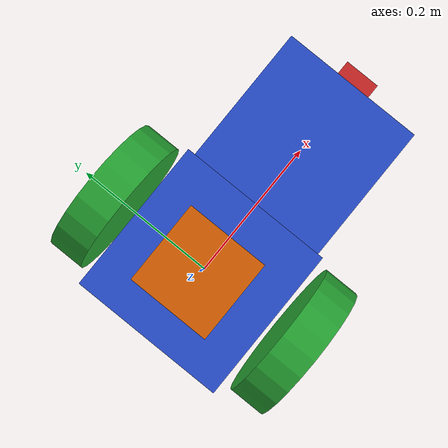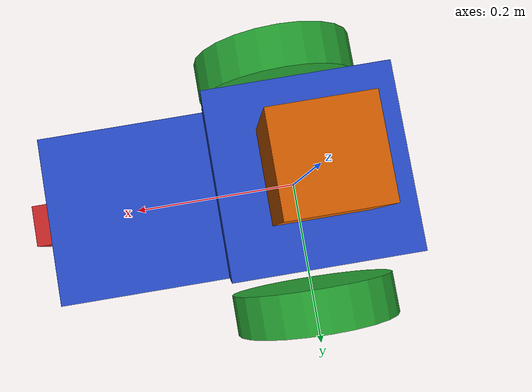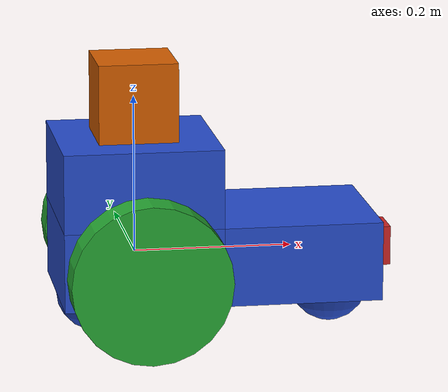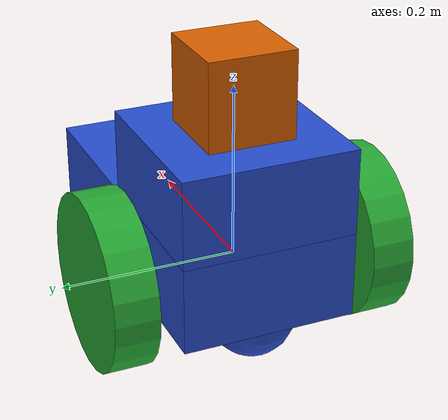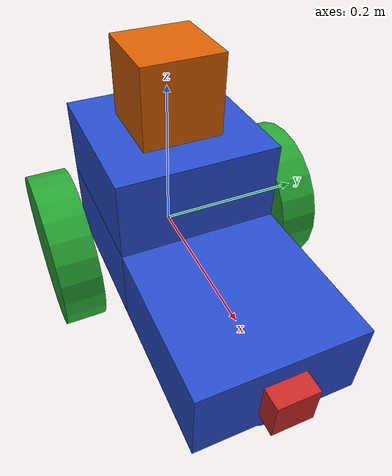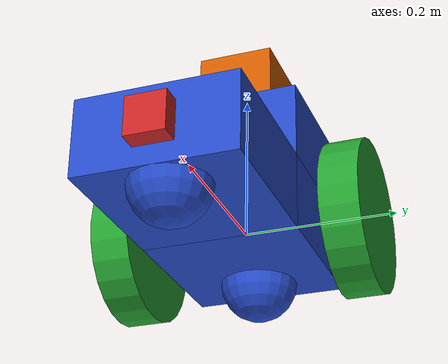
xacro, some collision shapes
<?xml version='1.0'?>

<robot name="shane_bot" xmlns:xacro="http://www.ros.org/wiki/xacro">

	<!-- Import the Gazebo plugin file (i.e. shane_bot.gazebo) -->
	<xacro:include filename="$(find shane_bot)/urdf/shane_bot.gazebo"/>

	<!-- Import Rviz colors -->
  	<xacro:include filename="$(find shane_bot)/urdf/materials.xacro"/>

	<!-- Not sure what this part is -->
	<link name="robot_footprint"></link>

	<!-- Joint from robot footprint to chassis -->
	<joint name="robot_footprint_joint" type="fixed">
		<origin xyz="0 0 0" rpy="0 0 0" />
		<parent link="robot_footprint"/>
		<child link="chassis" />
	</joint>

	<!-- The robot chassis -->
	<link name="chassis">
		<pose>0 0 0.1 0 0 0</pose>

		<inertial>
			<mass value="15.0"/>
			<origin xyz="0.0 0 0" rpy="0 0 0"/>
			<inertia
				ixx="0.1" ixy="0" ixz="0"
				iyy="0.1" iyz="0"
				izz="0.1"
			/>
		</inertial>

		<!-- Main Chassis -->
		<collision name="chassis_collision">
			<origin xyz="0 0 0" rpy="0 0 0"/>
			<geometry>
				<box size="0.2 0.2 0.1"/>
			</geometry>
		</collision>

		<visual name="chassis_visual">
			<origin xyz="0 0 0" rpy="0 0 0"/>
			<geometry>
				<box size="0.2 0.2 0.1"/>
			</geometry>
			<material name="blue"/>
		</visual>

		<!-- Front portion of chassis -->
		<collision name="front_chassis_collision">
			<origin xyz="0.2 0 0" rpy="0 0 0"/>
			<geometry>
				<box size="0.2 0.2 0.1"/>
			</geometry>
		</collision>

		<visual name="front_chassis_visual">
			<origin xyz="0.2 0 0" rpy="0 0 0"/>
			<geometry>
				<box size="0.2 0.2 0.1"/>
			</geometry>
			<material name="blue"/>
		</visual>

		<!-- Top portion of chassis -->
		<collision name="top_chassis_collision">
			<origin xyz="0 0 0.1" rpy="0 0 0"/>
			<geometry>
				<box size="0.2 0.2 0.1"/>
			</geometry>
		</collision>

		<visual name="top_chassis_visual">
			<origin xyz="0 0 0.1" rpy="0 0 0"/>
			<geometry>
				<box size="0.2 0.2 0.1"/>
			</geometry>
			<material name="blue"/>
		</visual>

		<!-- Caster at the back of robot -->
		<collision name='back_caster_collision'>
			<origin xyz="-0.05 0 -0.05" rpy="0 0 0"/>
			<geometry>
				<sphere radius="0.0499"/>
			</geometry>
		</collision>

		<visual name="back_caster_visual">
			<origin xyz="-0.05 0 -0.05" rpy="0 0 0"/>
			<geometry>
				<sphere radius="0.05"/>
			</geometry>
		</visual>

		<!-- Caster at front of robot -->
		<collision name='front_caster_visual'>
			<origin xyz="0.25 0 -0.05" rpy="0 0 0"/>
			<geometry>
				<sphere radius="0.0499"/>
			</geometry>
		</collision>

		<visual name="front_caster_visual">
			<origin xyz="0.25 0 -0.05" rpy="0 0 0"/>
			<geometry>
				<sphere radius="0.05"/>
			</geometry>
		</visual>
	</link>

	<!-- Robot left wheel -->
	<link name="left_wheel">
		<inertial>
			<mass value="5"/>
			<origin xyz="0 0 0" rpy="0 1.5707 1.5707"/>
			<inertia
				ixx="0.1" ixy="0" ixz="0"
				iyy="0.1" iyz="0"
				izz="0.1"
			/>
		</inertial>

		<collision>
			<origin xyz="0 0 0" rpy="0 1.5707 1.5707"/>
			<geometry>
				<cylinder radius="0.1" length="0.05"/>
			</geometry>
		</collision>

		<visual>
			<origin xyz="0 0 0" rpy="0 1.5707 1.5707"/>
			<geometry>
				<cylinder radius="0.1" length="0.05"/>
			</geometry>
			<material name="green"/>
		</visual>
	</link>

	<!-- Robot right wheel -->
	<link name="right_wheel">
		<inertial>
			<mass value="5"/>
			<origin xyz="0 0 0" rpy="0 1.5707 1.5707"/>
			<inertia
				ixx="0.1" ixy="0" ixz="0"
				iyy="0.1" iyz="0"
				izz="0.1"
			/>
		</inertial>

		<collision>
			<origin xyz="0 0 0" rpy="0 1.5707 1.5707"/>
			<geometry>
				<cylinder radius="0.1" length="0.05"/>
			</geometry>
		</collision>

		<visual>
			<origin xyz="0 0 0" rpy="0 1.5707 1.5707"/>
			<geometry>
				<cylinder radius="0.1" length="0.05"/>
			</geometry>
			<material name="green"/>
		</visual>
	</link>

	<!-- Joint connecting the left wheel to the chassis -->
	<joint type="continuous" name="left_wheel_hinge">
		<origin xyz="0 0.15 0" rpy="0 0 0"/>
		<child link="left_wheel"/>
		<parent link="chassis"/>
		<axis xyz="0 1 0" rpy="0 0 0"/>
		<limit effort="10000" velocity="1000"/>
		<dynamics damping="1.0" friction="1.0"/>
	</joint>

	<!-- Joint connecting the right wheel to the chassis -->
	<joint type="continuous" name="right_wheel_hinge">
		<origin xyz="0 -0.15 0" rpy="0 0 0"/>
		<child link="right_wheel"/>
		<parent link="chassis"/>
		<axis xyz="0 1 0" rpy="0 0 0"/>
		<limit effort="10000" velocity="1000"/>
		<dynamics damping="1.0" friction="1.0"/>
	</joint>

	<!-- Camera -->
	<link name="camera">
		<inertial>
			<mass value="0.1"/>
			<origin xyz="0 0 0" rpy="0 0 0"/>
			<inertia
				ixx="1e-6" ixy="0" ixz="0"
				iyy="1e-6" iyz="0"
				izz="1e-6"
			/>
		</inertial>

		<collision>
			<origin xyz="0 0 0" rpy="0 0 0"/>
			<geometry>
				<box size="0.05 0.05 0.05"/>
			</geometry>
		</collision>

		<visual>
			<origin xyz="0 0 0" rpy="0 0 0"/>
			<geometry>
				<box size="0.05 0.05 0.05"/>
			</geometry>
			<material name="red"/>
		</visual>
	</link>

	<!-- Joint connecting the camera to the chassis -->
	<joint type="fixed" name="camera_joint">
		<origin xyz="0.3 0 0" rpy="0 0 0"/>
		<parent link="chassis"/>
		<child link="camera"/>
	</joint>

	<!-- Laser Range Finder -->
	<link name="hokuyo">
		<inertial>
			<mass value="0.1"/>
			<origin xyz="0 0 0" rpy="0 0 0"/>
			<inertia
				ixx="1e-6" ixy="0" ixz="0"
				iyy="1e-6" iyz="0"
				izz="1e-6"
			/>
		</inertial>

		<collision>
			<origin xyz="0 0 0" rpy="0 0 0"/>
			<geometry>
				<box size="0.1 0.1 0.1"/>
			</geometry>
		</collision>

		<visual>
			<origin xyz="0 0 0" rpy="0 0 0"/>
			<geometry>
				<mesh filename="package://shane_bot/meshes/hokuyo.dae"/>
			</geometry>
		</visual>
	</link>

	<!-- Joint connecting the  -->
	<joint type="fixed" name="hokuyo_joint">
		<origin xyz="0 0 0.2" rpy="0 0 0"/>
		<parent link="chassis"/>
		<child link="hokuyo"/>
	</joint>
</robot>
